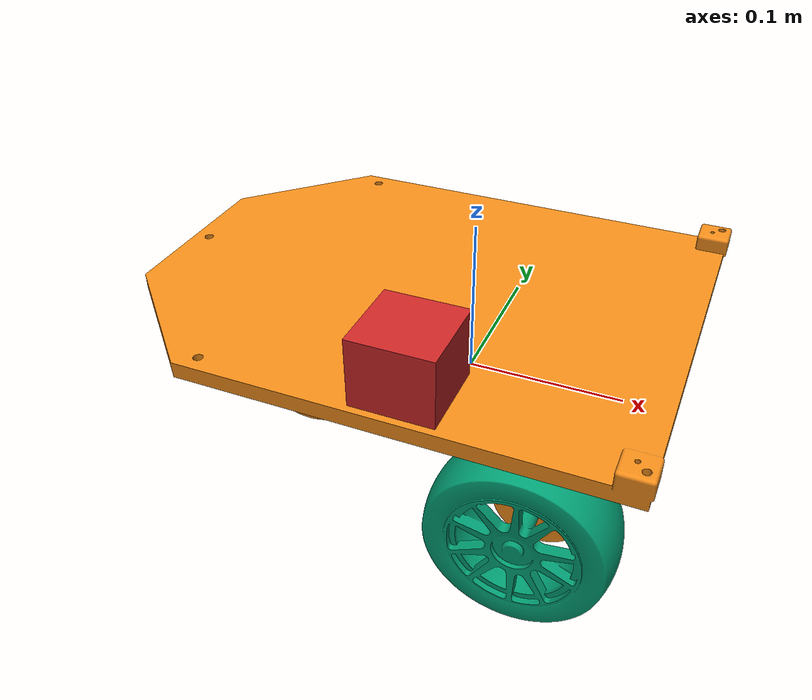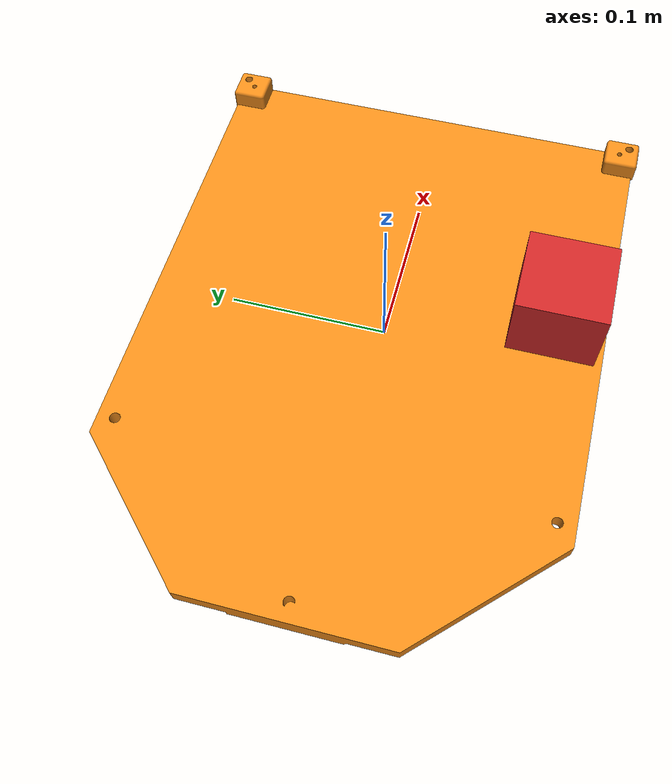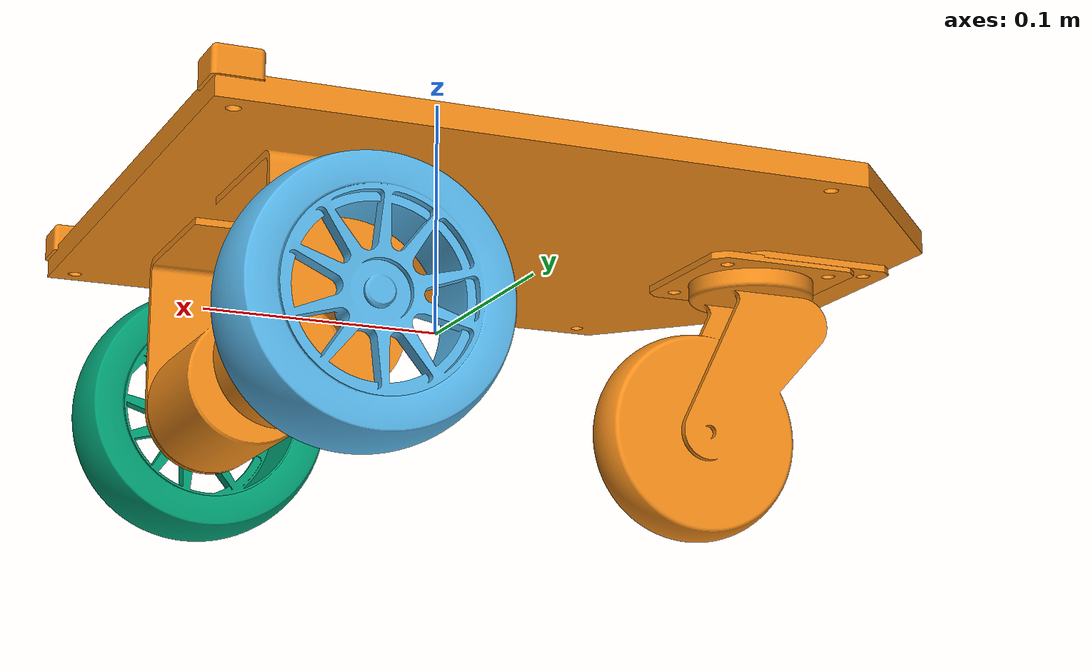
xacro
<?xml version='1.0'?>

<robot name="myrobot" xmlns:xacro="http://www.ros.org/wiki/xacro">

  <xacro:include filename="$(find mybot_description)/urdf/mybot.gazebo" />
  <xacro:include filename="$(find mybot_description)/urdf/materials.xacro" />
  <xacro:include filename="$(find mybot_description)/urdf/macros.xacro" />

  <link name='chassis'>
    <pose>0 0 0.1 0 0 0</pose>

    <inertial>
      <mass value="3.0"/>
      <origin xyz="0.0 0 0.1" rpy=" 0 0 0"/>
      <inertia ixx="0.021318375" ixy="0"  ixz="0"
             iyy="0.030650708" iyz="-0.000002"
             izz="0.013549"/>
      </inertial>

    <collision name='collision'>
      <geometry>
        <box size=".4 .2 .1"/>
      </geometry>
    </collision>

    <visual name='chassis_visual'>
      <origin xyz="0 0 0.03" rpy="0.0 0.0 1.57" />
      <geometry>
        <mesh filename="package://mybot_description/meshes/frobit_base.stl" />
      </geometry>
    </visual>

    <collision name='caster_collision'>
      <origin xyz="-0.15 0 -0.05" rpy=" 0 0 0"/>
      <geometry>
        <sphere radius="0.03"/>
      </geometry>
      <surface>
        <friction>
          <ode>
            <mu>0</mu>
            <mu2>0</mu2>
            <slip1>1.0</slip1>
            <slip2>1.0</slip2>
          </ode>
        </friction>
      </surface>
    </collision>

    <visual name='caster_visual'>
      <origin xyz="-0.15 0 0.04" rpy=" 0 0 1.57"/>
      <geometry>
        <mesh filename="package://mybot_description/meshes/front_wheel.stl" />
      </geometry>
    </visual>
  </link>

  <link name="left_wheel">
    <!--origin xyz="0.1 0.13 0.1" rpy="0 1.5707 1.5707"/-->
    <collision name="collision">
      <origin xyz="0 0 0" rpy="0 1.5707 1.5707"/>
      <geometry>
        <cylinder radius="0.05" length="0.04"/>
      </geometry>
    </collision>
    <visual name="left_wheel_visual">
      <origin xyz="0 0 0" rpy="1.57 0 1.57"/>
      <geometry>
        <mesh filename="package://mybot_description/meshes/frobit_wheel.stl" />
      </geometry>
    </visual>
    <inertial>
      <origin xyz="0 0 0" rpy="0 1.5707 1.5707"/>
      <mass value="5"/>
      <cylinder_inertia m="5" r="0.05" h="0.04"/>
      <inertia
        ixx="1.0" ixy="0.0" ixz="0.0"
        iyy="1.0" iyz="0.0"
        izz="1.0"/>
    </inertial>
  </link>

  <link name="right_wheel">
    <!--origin xyz="0.1 -0.13 0.1" rpy="0 1.5707 1.5707"/-->
    <collision name="collision">
      <origin xyz="0 0 0" rpy="0 1.5707 1.5707"/>
      <geometry>
        <cylinder radius="0.05" length="0.04"/>
      </geometry>
    </collision>
    <visual name="right_wheel_visual">
      <origin xyz="0 0 0" rpy="1.57 0 -1.57"/>
      <geometry>
        <mesh filename="package://mybot_description/meshes/frobit_wheel.stl" />
      </geometry>
    </visual>
    <inertial>
      <origin xyz="0 0 0" rpy="0 1.5707 1.5707"/>
      <mass value="5"/>
      <cylinder_inertia m="5" r="0.05" h="0.04"/>
      <inertia
        ixx="1.0" ixy="0.0" ixz="0.0"
        iyy="1.0" iyz="0.0"
        izz="1.0"/>
    </inertial>
  </link>

   <!-- Sensor links -->
  <link name="cam_link">
    <collision name="cam_collision">
      <origin xyz="0 0 0" rpy="0 0 0"/>
      <geometry>
        <box size="0.05 0.05 0.05"/>
      </geometry>
    </collision>
    <visual name="cam_vis">
      <origin xyz="0 0 0" rpy="0 0 0"/>
      <geometry>
        <box size="0.05 0.05 0.05"/>
      </geometry>
    </visual>
  </link>

  <joint type="continuous" name="left_wheel_hinge">
    <origin xyz="0.07 0.09 -0.02" rpy="0 0 0"/>
    <child link="left_wheel"/>
    <parent link="chassis"/>
    <axis xyz="0 1 0" rpy="0 0 0"/>
    <limit effort="100" velocity="100"/>
    <joint_properties damping="0.0" friction="0.0"/>
  </joint>

  <joint type="continuous" name="right_wheel_hinge">
    <origin xyz="0.07 -0.09 -0.02" rpy="0 0 0"/>
    <child link="right_wheel"/>
    <parent link="chassis"/>
    <axis xyz="0 1 0" rpy="0 0 0"/>
    <limit effort="100" velocity="100"/>
    <joint_properties damping="0.0" friction="0.0"/>
  </joint>

  <joint type="fixed" name="cam_joint">
    <origin xyz="0 -0.10 0.07" rpy="0 0 -1.5707"/>
    <child link="cam_link"/>
    <parent link="chassis"/>
    <axis xyz="0 0 0" />
  </joint>

</robot>

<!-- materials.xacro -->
<robot>

  <material name="black">
    <color rgba="0.0 0.0 0.0 1.0"/>
  </material>
  <material name="blue">
    <color rgba="0.203125 0.23828125 0.28515625 1.0"/>
  </material>
  <material name="green">
    <color rgba="0.0 0.8 0.0 1.0"/>
  </material>
  <material name="grey">
    <color rgba="0.2 0.2 0.2 1.0"/>
  </material>
  <material name="orange">
    <color rgba="1.0 0.423529411765 0.0392156862745 1.0"/>
  </material>
  <material name="brown">
    <color rgba="0.870588235294 0.811764705882 0.764705882353 1.0"/>
  </material>
  <material name="red">
    <color rgba="0.80078125 0.12890625 0.1328125 1.0"/>
  </material>
  <material name="white">
    <color rgba="1.0 1.0 1.0 1.0"/>
  </material>

</robot>
